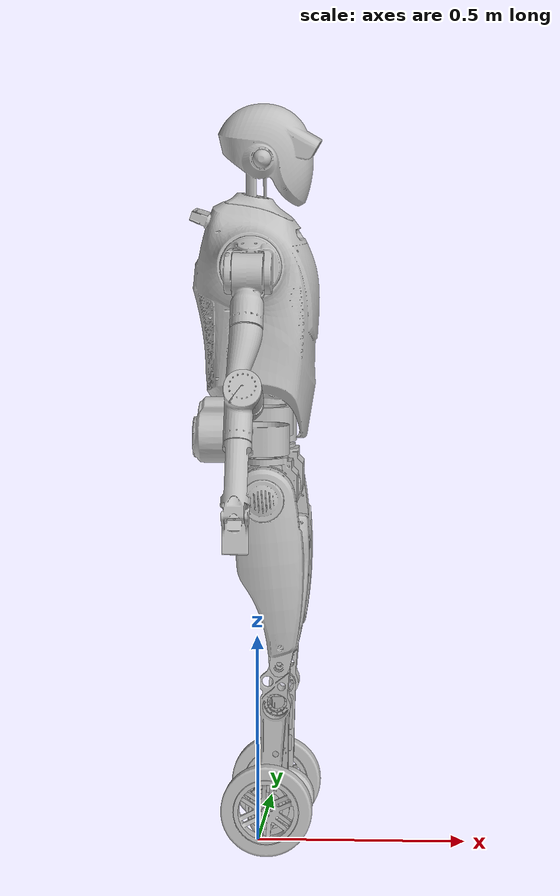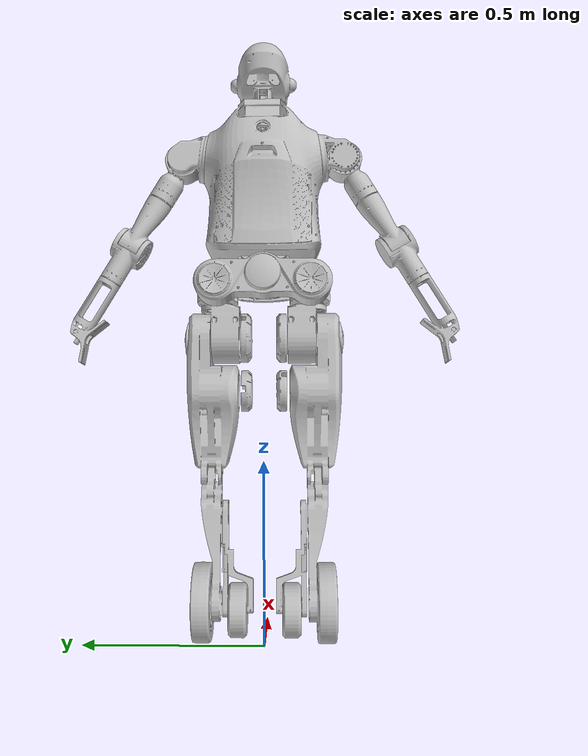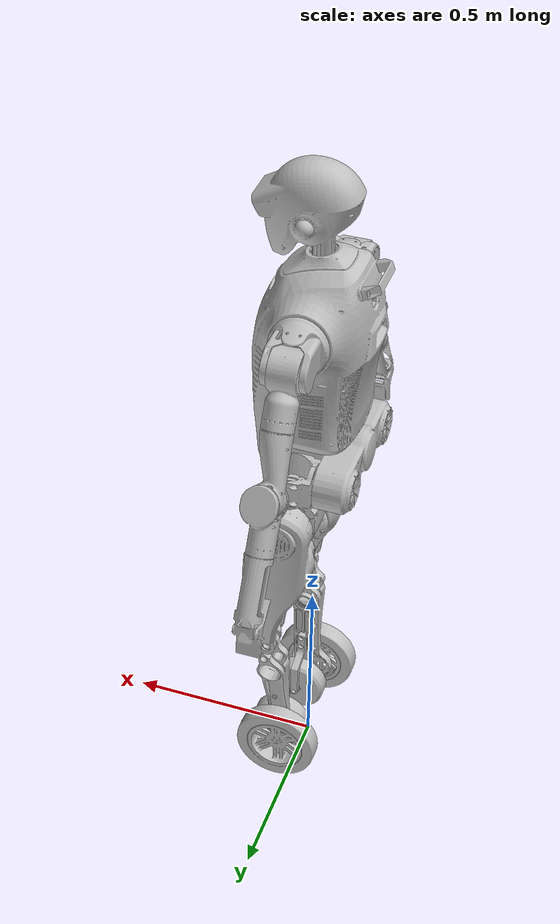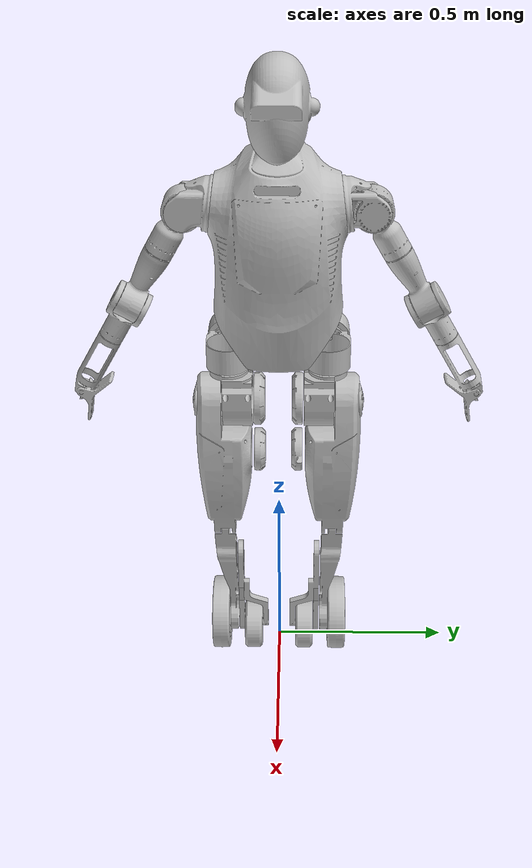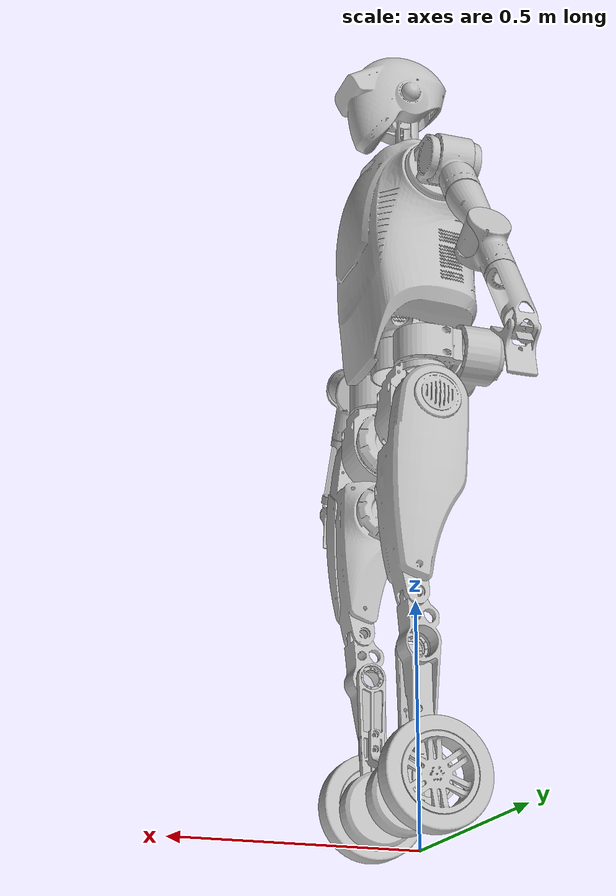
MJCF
<mujoco model="gensong_robot_urdf">
  <compiler angle="radian" meshdir="./meshes/" />

  <default>
    <geom material="silver_mat" type="mesh"/>
    <joint damping="0.1" armature="0.01" frictionloss="0.1"/>
    <default class="visual">
        <geom group="2" type="mesh" density="0" material="silver_mat" contype="0" conaffinity="0"/>
    </default>
    <default class="collision">
        <geom group="3" rgba="0.7 0.7 0.7 0.5" type="capsule" contype="1" conaffinity="1"/>
        <default class="foot_capsule">
            <geom type="capsule" size="0.01"/>
        </default>
    </default>
    <site group="5" rgba="1 0 0 1"/>
    <default class="arm1_2">
      <joint armature="2.26901" damping="20.741" frictionloss="16"/>
    </default>
    <default class="arm3_4">
      <joint armature="0.6021" damping="3.4423" frictionloss="4.461"/>
    </default>
    <default class="arm5">
      <joint armature="0.134112" damping="1.59352" frictionloss="2.002"/>
    </default>
    <default class="leg3">
      <joint armature="15.5611502228" damping="168.7711104376" frictionloss="33.9204772059"/>
    </default>
    <default class="leg4">
      <joint armature="10.9041046071" damping="106.2846631079" frictionloss="32.0843674861"/>
    </default>
    <default class="leg5">
      <joint armature="0.134112" damping="1.59352" frictionloss="2.002"/>
    </default>
    <default class="wheel">
      <joint armature="0.0067368543" damping="0.001" frictionloss="0.2876406446"/>
    </default>
    <default class="middle">
      <joint armature="2.0385298285" damping="20.5560147798" frictionloss="8.3756844594"/>
    </default>
  </default>
  <asset>
    <material name="silver_mat" rgba="0.75294 0.75294 0.75294 1"/>

    <mesh name="body" file="body.STL"/>
    <mesh name="head" file="head.STL"/>
    <mesh name="waist1" file="waist1.STL"/>
    <mesh name="waist2" file="waist2.STL"/>

    <mesh name="left_arm_1" file="left_arm_1.STL"/>
    <mesh name="left_arm_2" file="left_arm_2.STL"/>
    <mesh name="left_arm_3" file="left_arm_3.STL"/>
    <mesh name="left_arm_4" file="left_arm_4.STL"/>
    <mesh name="left_arm_5" file="left_arm_5.STL"/>

    <mesh name="right_arm_1" file="right_arm_1.STL"/>
    <mesh name="right_arm_2" file="right_arm_2.STL"/>
    <mesh name="right_arm_3" file="right_arm_3.STL"/>
    <mesh name="right_arm_4" file="right_arm_4.STL"/>
    <mesh name="right_arm_5" file="right_arm_5.STL"/>

    <mesh name="left_leg_1" file="left_leg_1.STL"/>
    <mesh name="left_leg_2" file="left_leg_2.STL"/>
    <mesh name="left_leg_3" file="left_leg_3.STL"/>
    <mesh name="left_leg_4" file="left_leg_4.STL"/>
    <mesh name="left_leg_5" file="left_leg_5.STL"/>
    <mesh name="left_wheel_1" file="left_wheel_1.STL"/>
    <mesh name="left_wheel_2" file="left_wheel_2.STL"/>

    <mesh name="right_leg_1" file="right_leg_1.STL"/>
    <mesh name="right_leg_2" file="right_leg_2.STL"/>
    <mesh name="right_leg_3" file="right_leg_3.STL"/>
    <mesh name="right_leg_4" file="right_leg_4.STL"/>
    <mesh name="right_leg_5" file="right_leg_5.STL"/>
    <mesh name="right_wheel_1" file="right_wheel_1.STL"/>
    <mesh name="right_wheel_2" file="right_wheel_2.STL"/>
  </asset>
  <worldbody>
    <body name="body" pos="0 0 1.40">
      <site name="imu" size="0.01" pos="0 0 0" rgba="1 0 0 1" />
      <inertial pos="0.00888 -0.00078 -0.1632" mass="15.52189" fullinertia="0.2489 0.2062 0.14336 0.00132 0.00782 0.00085"/>
      <geom mesh="body" class="visual"/>
      <geom name="body_collision" class="collision" type="box" size="0.15 0.175 0.225" pos="0 0 -0.1" />
      <joint name="floating_base_joint" type="free" limited="false" actuatorfrclimited="false" />
      <body name="head" pos="0 0 0.1035">
        <inertial pos="0.03712 -0.00640 0.14984" mass="3.09885" fullinertia="0.01485 0.01088 0.01952 0.00228 -0.00118 0.00065"/>
        <joint name="joint_head" axis="0 0 1" range="-1.57079632679489 1.57079632679489"/>
        <geom mesh="head" class="visual"/>
        <geom name="head_collision" class="collision" type="cylinder" size="0.135 0.1225" pos="0.04 0 0.15"  />
      </body>

      <body name="left_arm_1" pos="0 0.1523 0">
        <inertial pos="0.00329 -0.02828 0.00012" mass="2.10662" fullinertia="0.00478 0.00277 0.00497 -0.00057 0.00002 0.00002"/>
        <joint name="joint_left_arm_1" axis="0 -1 0" range="-3.14159265358979 3.14159265358979" class="arm1_2"/>
        <geom mesh="left_arm_1" class="visual"/>

        <body name="left_arm_2" pos="0 0.088 -0.012">
          <inertial pos="0.00778 0.01809 -0.03134" mass="2.82187" fullinertia="0.01065 0.00851 0.00445 0.00037 -0.00064 0.00352"/>
          <joint name="joint_left_arm_2" axis="1 0 0" range="-0.740368668695995 2.284112392084979" class="arm1_2"/>
          <geom mesh="left_arm_2" class="visual"/>
          <geom name="left_arm_2_collision" class="collision" type="cylinder" size="0.04 0.0675" pos="0 0.04 -0.07" euler="0.5236 0 0"  />

          <body name="left_arm_3" pos="0 0.06925 -0.11994" euler="0.5236 0 0">
            <inertial pos="-0.00092 -0.01121 -0.14409" mass="1.19499" fullinertia="0.00292 0.00291 0.00076 0.00000 0.00006 -0.00011"/>
            <joint name="joint_left_arm_3" axis="0 0 -1" range="-3.14159265358979 3.14159265358979" class="arm3_4"/>
            <geom mesh="left_arm_3" class="visual"/>
            <geom name="left_arm_3_collision" class="collision" type="cylinder" size="0.038 0.0375" pos="0 0 -0.055"  />

            <body name="left_arm_4" pos="0 0 -0.1615">
              <inertial pos="-0.00811 -0.00576 -0.07659" mass="0.76936" fullinertia="0.00182 0.00169 0.00060 0.00003 -0.00010 0.00028"/>
              <joint name="joint_left_arm_4" axis="0 -1 0" range="-0.700924227600923 2.47766940613115" class="arm3_4"/>
              <geom mesh="left_arm_4" class="visual"/>
              <geom name="left_arm_4_1_collision" class="collision" type="sphere" size="0.033" pos="-0.01 0 0"  />
              <geom name="left_arm_4_2_collision" class="collision" type="cylinder" size="0.033 0.0535" pos="-0.01 0 -0.0565"  />

              <body name="left_arm_5" pos="-0.01 0 -0.122">
                <inertial pos="0.00000 -0.01527 -0.13525" mass="0.43731" fullinertia="0.00222 0.00208 0.00044 0 0 -0.00029"/>
                <joint name="joint_left_arm_5" axis="0 0 1" range="-3.14159265358979 3.14159265358979" class="arm5"/>
                <geom mesh="left_arm_5" class="visual"/>
                <geom name="left_arm_5_1_collision" class="collision" type="box" size="0.03 0.005 0.07" pos="0 -0.04 -0.185"  />
                <geom name="left_arm_5_2_collision" class="collision" type="cylinder" size="0.033 0.104" pos="0 0 -0.104"  />
              </body>
            </body>
          </body>
        </body>
      </body>

      <body name="right_arm_1" pos="0 -0.1523 0">
        <inertial pos="-0.00329 0.02828 0.00012" mass="2.10662" fullinertia="0.00478 0.00277 0.00497 -0.00057 -0.00002 -0.00002"/>
        <joint name="joint_right_arm_1" axis="0 1 0" range="-3.14159265358979 3.14159265358979" class="arm1_2"/>
        <geom mesh="right_arm_1" class="visual"/>

        <body name="right_arm_2" pos="0 -0.088 -0.012">
          <inertial pos="-0.00778 -0.01809 -0.03134" mass="2.82187" fullinertia="0.01065 0.00851 0.00445 0.00037 0.00064 -0.00352"/>
          <joint name="joint_right_arm_2" axis="1 0 0" range="-2.284112392084979 0.740368668695995" class="arm1_2"/>
          <geom mesh="right_arm_2" class="visual"/>
          <geom name="right_arm_2_collision" class="collision" type="cylinder" size="0.04 0.0675" pos="0 -0.04 -0.07" euler="-0.5236 0 0"  />

          <body name="right_arm_3" pos="0 -0.06925 -0.11994" euler="-0.5236 0 0">
            <inertial pos="-0.00092 -0.01121 -0.14409" mass="1.19499" fullinertia="0.00292 0.00291 0.00076 0.00000 0.00006 -0.00011"/>
            <joint name="joint_right_arm_3" axis="0 0 -1" range="-3.14159265358979 3.14159265358979" class="arm3_4"/>
            <geom mesh="right_arm_3" class="visual"/>
            <geom name="right_arm_3_collision" class="collision" type="cylinder" size="0.038 0.0375" pos="0 0 -0.055"  />

            <body name="right_arm_4" pos="0 0 -0.1615">
              <inertial pos="-0.00811 -0.00576 -0.07659" mass="0.76936" fullinertia="0.00182 0.00169 0.00060 0.00003 -0.00010 0.00028"/>
              <joint name="joint_right_arm_4" axis="0 -1 0" range="-0.700924227600923 2.47766940613115" class="arm3_4"/>
              <geom mesh="right_arm_4" class="visual"/>
              <geom name="right_arm_4_1_collision" class="collision" type="sphere" size="0.033" pos="-0.01 0 0"  />
              <geom name="right_arm_4_2_collision" class="collision" type="cylinder" size="0.033 0.0535" pos="-0.01 0 -0.0565"  />

              <body name="right_arm_5" pos="-0.01 0 -0.122">
                <inertial pos="0.00000 0.01527 -0.13525" mass="0.43731" fullinertia="0.00222 0.00208 0.00044 0 0 0.00029"/>
                <joint name="joint_right_arm_5" axis="0 0 1" range="-3.14159265358979 3.14159265358979" class="arm5"/>
                <geom mesh="right_arm_5" class="visual"/>
                <geom name="right_arm_5_1_collision" class="collision" type="box" size="0.03 0.005 0.07" pos="0 0.04 -0.185"  />
                <geom name="right_arm_5_2_collision" class="collision" type="cylinder" size="0.033 0.104" pos="0 0 -0.104"  />
              </body>
            </body>
          </body>
        </body>
      </body>

      <body name="waist1" pos="0.030004 0 -0.3815">
        <inertial pos="-0.00588 -0.00001 0.02656" mass="2.58277" fullinertia="0.00144 0.00165 0.00202 0 -0.00033 0"/>
        <joint name="joint_waist1" axis="0 0 -1" range="-0.139626340159546 0.139626340159546" class="middle"/>
        <geom mesh="waist1" class="visual"/>

        <body name="waist2" pos="-0.06637 0 0">
          <inertial pos="-0.02324 0.00000 -0.01280" mass="7.47872" fullinertia="0.09227 0.00385 0.09080 0 0.00004 0"/>
          <joint name="joint_waist2" axis="1 0 0" range="-0.225322006432468 0.225322006432468" class="middle"/>
          <geom mesh="waist2" class="visual"/>
          <geom name="waist2_collision" class="collision" type="box" size="0.04 0.19 0.055" pos="-0.055 0 -0.025"  />

          <body name="left_leg_1" pos="0 0.135 -0.02">
            <inertial pos="0.06008 0.00001 -0.02669" mass="2.60468" fullinertia="0.00147 0.00171 0.00210 0 0.00027 0"/>
            <joint name="joint_left_leg_1" axis="-1 0 0" range="-1.570796326794897 0.332834288355319" class="middle"/>
            <geom mesh="left_leg_1" class="visual"/>
            <geom name="left_leg_1_collision" class="collision" type="cylinder" size="0.058 0.035" pos="0.065 0 -0.005"  />

            <body name="left_leg_2" pos="0.066366 0 -0.13989">
              <inertial pos="-0.00011 -0.01615 0.00843" mass="5.30032" fullinertia="0.01809 0.02679 0.01850 0 0.00001 -0.00076"/>
              <joint name="joint_left_leg_2" axis="0 0 1" range="-0.768643002578303 1.570796326794897" class="middle"/>
              <geom mesh="left_leg_2" class="visual"/>
              <geom name="left_leg_2_collision" class="collision" type="cylinder" size="0.075 0.0975" pos="0 0 0" euler="1.5708 0 0"  />

              <body name="left_leg_3" pos="0 0.029 0">
                <inertial pos="0.01384 -0.02509 -0.18332" mass="7.58273" fullinertia="0.08492 0.08577 0.01259 0.00049 0.00128 0.00266"/>
                <joint name="joint_left_leg_3" axis="0 -1 0" range="-1.641482161500667 1.290670981849807" class="leg3"/>
                <geom mesh="left_leg_3" class="visual"/>
                <geom name="left_leg_3_collision" class="collision" type="box" size="0.0675 0.065 0.1275" pos="0.025 -0.01 -0.210"  />

                <body name="left_leg_4" pos="0.034862 -0.001 -0.39848">
                  <inertial pos="-0.01394 -0.01517 -0.11510" mass="1.77554" fullinertia="0.02110 0.02143 0.00116 -0.00002 -0.00152 -0.00038"/>
                  <joint name="joint_left_leg_4" axis="0 1 0" range="-0.058817595792209 2.149896572606615" class="leg4"/>
                  <geom mesh="left_leg_4" class="visual"/>
                  <geom name="left_leg_4_collision" class="collision" type="box" size="0.0325 0.03 0.11" pos="0 0 -0.1"  />

                  <body name="left_wheel_1" pos="-0.031235 0.014 -0.3486">
                    <inertial pos="0.00000 -0.00472 0.00000" mass="1.59650" fullinertia="0.00580 0.01097 0.00580 0 0 0"/>
                    <joint name="joint_left_wheel_1" axis="0 1 0" class="wheel"/>
                    <geom mesh="left_wheel_1" class="visual"/>
                    <geom name="left_wheel_1_collision" class="collision" type="cylinder" size="0.107 0.0325" pos="0 -0.01 0" euler="1.5708 0 0"  />
                  </body>
                  <body name="left_leg_5" pos="-0.0087011 -0.0451 -0.097111">
                    <inertial pos="-0.00043 -0.02427 -0.17316" mass="0.57763" fullinertia="0.00454 0.00419 0.00054 0.00001 0 -0.00059"/>
                    <joint name="joint_left_leg_5" axis="0 1 0" range="-1.311963998724138 0" class="leg5"/>
                    <geom mesh="left_leg_5" class="visual"/>
                    <geom name="left_leg_5_collision" class="collision" type="box" size="0.025 0.0075 0.09" pos="0 -0.007 -0.08"  group="1"/>

                    <body name="left_wheel_2" pos="0 -0.043 -0.275">
                      <inertial pos="0.00000 0.00000 0.00000" mass="0.55913" fullinertia="0.00085 0.00144 0.00085 0 0 0"/>
                      <joint name="joint_left_wheel_2" type="hinge" axis="0 -1 0" damping="0" armature="0" frictionloss="0"/>
                      <geom mesh="left_wheel_2" class="visual"/>
                      <geom name="left_wheel_2_collision" class="collision" type="cylinder" size="0.075 0.0255" pos="0 0 0" euler="1.5708 0 0" friction="0.7 0.005 0.0001"/>
                    </body>
                  </body>
                </body>
              </body>
            </body>
          </body>

          <body name="right_leg_1" pos="0 -0.135 -0.02">
            <inertial pos="0.06008 0.00001 -0.02669" mass="2.60468" fullinertia="0.00147 0.00171 0.00210 0 0.00031 0"/>
            <joint name="joint_right_leg_1" axis="-1 0 0" range="-0.319918851890561 1.552819435499355" class="middle"/>
            <geom mesh="right_leg_1" class="visual"/>
            <geom name="right_leg_1_collision" class="collision" type="cylinder" size="0.058 0.035" pos="0.065 0 -0.005"  />

            <body name="right_leg_2" pos="0.066366 0 -0.13989">
              <inertial pos="0.00011 0.01615 0.00843" mass="5.30032" fullinertia="0.01809 0.02679 0.01850 0 -0.00001 0.00076"/>
              <joint name="joint_right_leg_2" axis="0 0 1" range="-1.570796326794897 0.768643002578303" class="middle"/>
              <geom mesh="right_leg_2" class="visual"/>
              <geom name="right_leg_2_collision" class="collision" type="cylinder" size="0.075 0.0975" pos="0 0 0" euler="1.5708 0 0"  />

              <body name="right_leg_3" pos="0 -0.03 0">
                <inertial pos="-0.01384 0.02509 -0.18332" mass="7.58273" fullinertia="0.08492 0.08577 0.01259 0.00049 -0.00128 -0.00266"/>
                <joint name="joint_right_leg_3" axis="0 1 0" range="-1.282293401440234 1.642005760276265" class="leg3"/>
                <geom mesh="right_leg_3" class="visual"/>
                <geom name="right_leg_3_collision" class="collision" type="box" size="0.0675 0.065 0.1275" pos="0.025 0.01 -0.210"  />

                <body name="right_leg_4" pos="0.034862 0.001 -0.39848">
                  <inertial pos="-0.01393 0.01521 -0.11509" mass="1.77554" fullinertia="0.02111 0.02143 0.00116 0.00002 -0.00152 0.00037"/>
                  <joint name="joint_right_leg_4" axis="0 -1 0" range="-2.147627644579023 0.058817595792209" class="leg4"/>
                  <geom mesh="right_leg_4" class="visual"/>
                  <geom name="right_leg_4_collision" class="collision" type="box" size="0.0325 0.03 0.11" pos="0 0 -0.1"  />

                  <body name="right_wheel_1" pos="-0.031235 -0.014 -0.3486">
                    <inertial pos="0.00000 0.00472 0.00000" mass="1.59650" fullinertia="0.00580 0.01097 0.00580 0 0 0"/>
                    <joint name="joint_right_wheel_1" axis="0 -1 0" class="wheel"/>
                    <geom mesh="right_wheel_1" class="visual"/>
                    <geom name="right_wheel_1_collision" class="collision" type="cylinder" size="0.107 0.0325" pos="0 0.01 0" euler="1.5708 0 0"  />
                  </body>
                  <body name="right_leg_5" pos="-0.0087011 0.0451 -0.097111">
                    <inertial pos="-0.00043 0.02425 -0.17316" mass="0.57763" fullinertia="0.00454 0.00419 0.00054 -0.00001 0 0.00059"/>
                    <joint name="joint_right_leg_5" axis="0 -1 0" range="0 1.311963998724138" class="leg5"/>
                    <geom mesh="right_leg_5" class="visual"/>
                    <geom name="right_leg_5_collision" class="collision" type="box" size="0.025 0.0075 0.09" pos="0 0.007 -0.08"  group="1"/>

                    <body name="right_wheel_2" pos="0 0.043 -0.275">
                      <inertial pos="0.00000 0.00000 0.00000" mass="0.55913" fullinertia="0.00085 0.00144 0.00085 0 0 0"/>
                      <joint name="joint_right_wheel_2" type="hinge" axis="0 1 0" damping="0" armature="0" frictionloss="0"/>
                      <geom mesh="right_wheel_2" class="visual"/>
                      <geom name="right_wheel_2_collision" class="collision" type="cylinder" size="0.075 0.0255" pos="0 0 0" euler="1.5708 0 0" friction="0.7 0.005 0.0001"/>
                    </body>
                  </body>
                </body>
              </body>
            </body>
          </body>
        </body>
      </body>
    </body>
  </worldbody>
  <sensor>
    <framequat name="quat_sensor" objtype="site" objname="imu" />
    <gyro name="gyro_sensor" site="imu" />
    <accelerometer name="accel_sensor" site="imu" />
  </sensor>
</mujoco>
